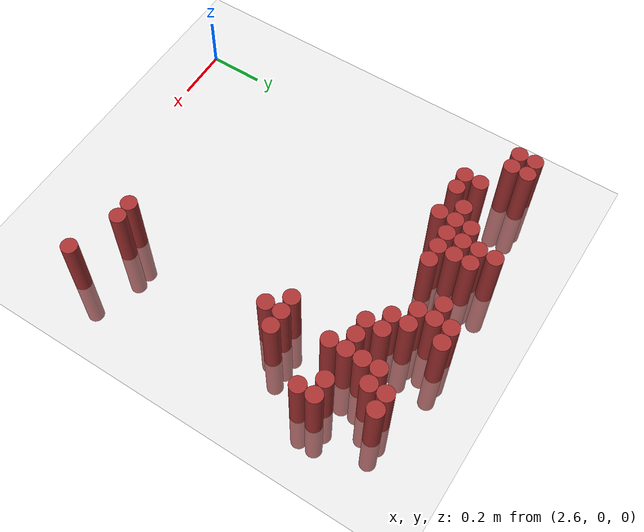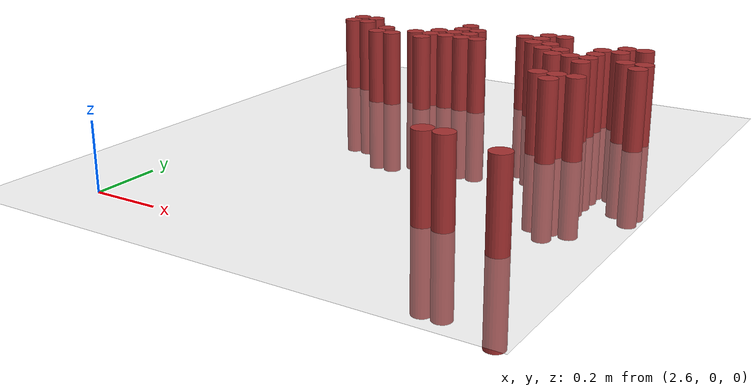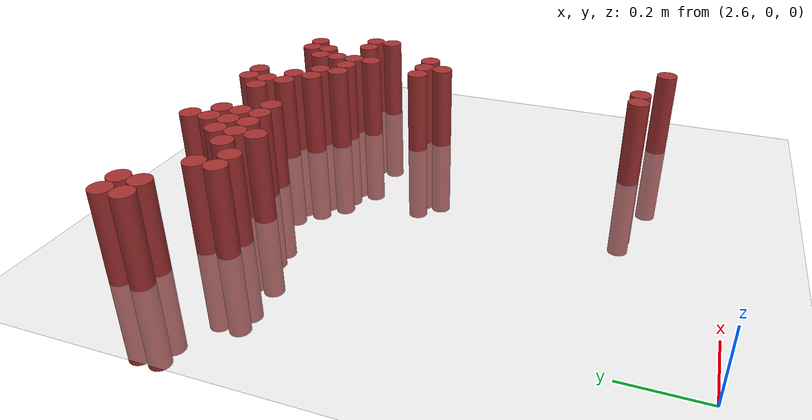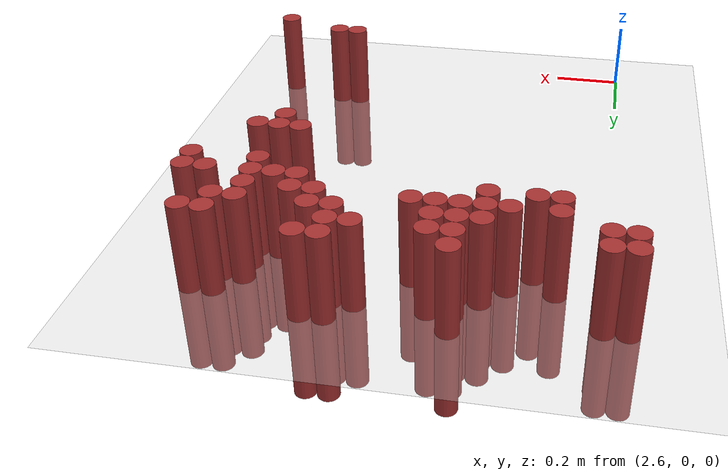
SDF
<sdf version="1.6">
 <world name="default">
  <model name="ground_plane">
   <static>1</static>
   <link name="link">
    <collision name="collision">
     <geometry><plane><normal>0 0 1</normal><size>100 100</size></plane></geometry>
     <surface><friction><ode><mu>100</mu><mu2>50</mu2></ode></friction></surface>
    </collision>
    <visual name="visual">
     <cast_shadows>0</cast_shadows>
     <geometry><plane><normal>0 0 1</normal><size>100 100</size></plane></geometry>
     <material>
      <script><uri>file://media/materials/scripts/gazebo.material</uri><name>Gazebo/Grey</name></script>
     </material>
    </visual>
   </link>
  </model>
  <model name="unit_cylinder_155">
   <static>1</static>
   <pose>2.970000 1.410000 0.000000 0.000000 0.000000 0.000000</pose>
   <link name="link">
    <inertial>
     <mass>1</mass>
     <inertia><ixx>0.145833</ixx><ixy>0</ixy><ixz>0</ixz><iyy>0.145833</iyy><iyz>0</iyz><izz>0.125</izz></inertia>
    </inertial>
    <collision name="collision">
     <geometry><cylinder><radius>0.030000</radius><length>0.5</length></cylinder></geometry>
    </collision>
    <visual name="visual">
     <geometry><cylinder><radius>0.030000</radius><length>0.5</length></cylinder></geometry>
     <material>
      <ambient>0.648000 0.192000 0.192000 1</ambient>
      <diffuse>0.648000 0.192000 0.192000 1</diffuse>
     </material>
     <material>
      <script><name>Gazebo/Grey</name><uri>file://media/materials/scripts/gazebo.material</uri></script>
     </material>
    </visual>
   </link>
  </model>
  <model name="unit_cylinder_156">
   <static>1</static>
   <pose>3.270000 1.410000 0.000000 0.000000 0.000000 0.000000</pose>
   <link name="link">
    <inertial>
     <mass>1</mass>
     <inertia><ixx>0.145833</ixx><ixy>0</ixy><ixz>0</ixz><iyy>0.145833</iyy><iyz>0</iyz><izz>0.125</izz></inertia>
    </inertial>
    <collision name="collision">
     <geometry><cylinder><radius>0.030000</radius><length>0.5</length></cylinder></geometry>
    </collision>
    <visual name="visual">
     <geometry><cylinder><radius>0.030000</radius><length>0.5</length></cylinder></geometry>
     <material>
      <ambient>0.648000 0.192000 0.192000 1</ambient>
      <diffuse>0.648000 0.192000 0.192000 1</diffuse>
     </material>
     <material>
      <script><name>Gazebo/Grey</name><uri>file://media/materials/scripts/gazebo.material</uri></script>
     </material>
    </visual>
   </link>
  </model>
  <model name="unit_cylinder_157">
   <static>1</static>
   <pose>3.330000 1.410000 0.000000 0.000000 0.000000 0.000000</pose>
   <link name="link">
    <inertial>
     <mass>1</mass>
     <inertia><ixx>0.145833</ixx><ixy>0</ixy><ixz>0</ixz><iyy>0.145833</iyy><iyz>0</iyz><izz>0.125</izz></inertia>
    </inertial>
    <collision name="collision">
     <geometry><cylinder><radius>0.030000</radius><length>0.5</length></cylinder></geometry>
    </collision>
    <visual name="visual">
     <geometry><cylinder><radius>0.030000</radius><length>0.5</length></cylinder></geometry>
     <material>
      <ambient>0.648000 0.192000 0.192000 1</ambient>
      <diffuse>0.648000 0.192000 0.192000 1</diffuse>
     </material>
     <material>
      <script><name>Gazebo/Grey</name><uri>file://media/materials/scripts/gazebo.material</uri></script>
     </material>
    </visual>
   </link>
  </model>
  <model name="unit_cylinder_161">
   <static>1</static>
   <pose>2.550000 1.350000 0.000000 0.000000 0.000000 0.000000</pose>
   <link name="link">
    <inertial>
     <mass>1</mass>
     <inertia><ixx>0.145833</ixx><ixy>0</ixy><ixz>0</ixz><iyy>0.145833</iyy><iyz>0</iyz><izz>0.125</izz></inertia>
    </inertial>
    <collision name="collision">
     <geometry><cylinder><radius>0.030000</radius><length>0.5</length></cylinder></geometry>
    </collision>
    <visual name="visual">
     <geometry><cylinder><radius>0.030000</radius><length>0.5</length></cylinder></geometry>
     <material>
      <ambient>0.648000 0.192000 0.192000 1</ambient>
      <diffuse>0.648000 0.192000 0.192000 1</diffuse>
     </material>
     <material>
      <script><name>Gazebo/Grey</name><uri>file://media/materials/scripts/gazebo.material</uri></script>
     </material>
    </visual>
   </link>
  </model>
  <model name="unit_cylinder_162">
   <static>1</static>
   <pose>2.610000 1.350000 0.000000 0.000000 0.000000 0.000000</pose>
   <link name="link">
    <inertial>
     <mass>1</mass>
     <inertia><ixx>0.145833</ixx><ixy>0</ixy><ixz>0</ixz><iyy>0.145833</iyy><iyz>0</iyz><izz>0.125</izz></inertia>
    </inertial>
    <collision name="collision">
     <geometry><cylinder><radius>0.030000</radius><length>0.5</length></cylinder></geometry>
    </collision>
    <visual name="visual">
     <geometry><cylinder><radius>0.030000</radius><length>0.5</length></cylinder></geometry>
     <material>
      <ambient>0.648000 0.192000 0.192000 1</ambient>
      <diffuse>0.648000 0.192000 0.192000 1</diffuse>
     </material>
     <material>
      <script><name>Gazebo/Grey</name><uri>file://media/materials/scripts/gazebo.material</uri></script>
     </material>
    </visual>
   </link>
  </model>
  <model name="unit_cylinder_163">
   <static>1</static>
   <pose>2.970000 1.350000 0.000000 0.000000 0.000000 0.000000</pose>
   <link name="link">
    <inertial>
     <mass>1</mass>
     <inertia><ixx>0.145833</ixx><ixy>0</ixy><ixz>0</ixz><iyy>0.145833</iyy><iyz>0</iyz><izz>0.125</izz></inertia>
    </inertial>
    <collision name="collision">
     <geometry><cylinder><radius>0.030000</radius><length>0.5</length></cylinder></geometry>
    </collision>
    <visual name="visual">
     <geometry><cylinder><radius>0.030000</radius><length>0.5</length></cylinder></geometry>
     <material>
      <ambient>0.648000 0.192000 0.192000 1</ambient>
      <diffuse>0.648000 0.192000 0.192000 1</diffuse>
     </material>
     <material>
      <script><name>Gazebo/Grey</name><uri>file://media/materials/scripts/gazebo.material</uri></script>
     </material>
    </visual>
   </link>
  </model>
  <model name="unit_cylinder_164">
   <static>1</static>
   <pose>3.030000 1.350000 0.000000 0.000000 0.000000 0.000000</pose>
   <link name="link">
    <inertial>
     <mass>1</mass>
     <inertia><ixx>0.145833</ixx><ixy>0</ixy><ixz>0</ixz><iyy>0.145833</iyy><iyz>0</iyz><izz>0.125</izz></inertia>
    </inertial>
    <collision name="collision">
     <geometry><cylinder><radius>0.030000</radius><length>0.5</length></cylinder></geometry>
    </collision>
    <visual name="visual">
     <geometry><cylinder><radius>0.030000</radius><length>0.5</length></cylinder></geometry>
     <material>
      <ambient>0.648000 0.192000 0.192000 1</ambient>
      <diffuse>0.648000 0.192000 0.192000 1</diffuse>
     </material>
     <material>
      <script><name>Gazebo/Grey</name><uri>file://media/materials/scripts/gazebo.material</uri></script>
     </material>
    </visual>
   </link>
  </model>
  <model name="unit_cylinder_165">
   <static>1</static>
   <pose>3.210000 1.350000 0.000000 0.000000 0.000000 0.000000</pose>
   <link name="link">
    <inertial>
     <mass>1</mass>
     <inertia><ixx>0.145833</ixx><ixy>0</ixy><ixz>0</ixz><iyy>0.145833</iyy><iyz>0</iyz><izz>0.125</izz></inertia>
    </inertial>
    <collision name="collision">
     <geometry><cylinder><radius>0.030000</radius><length>0.5</length></cylinder></geometry>
    </collision>
    <visual name="visual">
     <geometry><cylinder><radius>0.030000</radius><length>0.5</length></cylinder></geometry>
     <material>
      <ambient>0.648000 0.192000 0.192000 1</ambient>
      <diffuse>0.648000 0.192000 0.192000 1</diffuse>
     </material>
     <material>
      <script><name>Gazebo/Grey</name><uri>file://media/materials/scripts/gazebo.material</uri></script>
     </material>
    </visual>
   </link>
  </model>
  <model name="unit_cylinder_166">
   <static>1</static>
   <pose>3.270000 1.350000 0.000000 0.000000 0.000000 0.000000</pose>
   <link name="link">
    <inertial>
     <mass>1</mass>
     <inertia><ixx>0.145833</ixx><ixy>0</ixy><ixz>0</ixz><iyy>0.145833</iyy><iyz>0</iyz><izz>0.125</izz></inertia>
    </inertial>
    <collision name="collision">
     <geometry><cylinder><radius>0.030000</radius><length>0.5</length></cylinder></geometry>
    </collision>
    <visual name="visual">
     <geometry><cylinder><radius>0.030000</radius><length>0.5</length></cylinder></geometry>
     <material>
      <ambient>0.648000 0.192000 0.192000 1</ambient>
      <diffuse>0.648000 0.192000 0.192000 1</diffuse>
     </material>
     <material>
      <script><name>Gazebo/Grey</name><uri>file://media/materials/scripts/gazebo.material</uri></script>
     </material>
    </visual>
   </link>
  </model>
  <model name="unit_cylinder_167">
   <static>1</static>
   <pose>3.570000 1.350000 0.000000 0.000000 0.000000 0.000000</pose>
   <link name="link">
    <inertial>
     <mass>1</mass>
     <inertia><ixx>0.145833</ixx><ixy>0</ixy><ixz>0</ixz><iyy>0.145833</iyy><iyz>0</iyz><izz>0.125</izz></inertia>
    </inertial>
    <collision name="collision">
     <geometry><cylinder><radius>0.030000</radius><length>0.5</length></cylinder></geometry>
    </collision>
    <visual name="visual">
     <geometry><cylinder><radius>0.030000</radius><length>0.5</length></cylinder></geometry>
     <material>
      <ambient>0.648000 0.192000 0.192000 1</ambient>
      <diffuse>0.648000 0.192000 0.192000 1</diffuse>
     </material>
     <material>
      <script><name>Gazebo/Grey</name><uri>file://media/materials/scripts/gazebo.material</uri></script>
     </material>
    </visual>
   </link>
  </model>
  <model name="unit_cylinder_168">
   <static>1</static>
   <pose>3.630000 1.350000 0.000000 0.000000 0.000000 0.000000</pose>
   <link name="link">
    <inertial>
     <mass>1</mass>
     <inertia><ixx>0.145833</ixx><ixy>0</ixy><ixz>0</ixz><iyy>0.145833</iyy><iyz>0</iyz><izz>0.125</izz></inertia>
    </inertial>
    <collision name="collision">
     <geometry><cylinder><radius>0.030000</radius><length>0.5</length></cylinder></geometry>
    </collision>
    <visual name="visual">
     <geometry><cylinder><radius>0.030000</radius><length>0.5</length></cylinder></geometry>
     <material>
      <ambient>0.648000 0.192000 0.192000 1</ambient>
      <diffuse>0.648000 0.192000 0.192000 1</diffuse>
     </material>
     <material>
      <script><name>Gazebo/Grey</name><uri>file://media/materials/scripts/gazebo.material</uri></script>
     </material>
    </visual>
   </link>
  </model>
  <model name="unit_cylinder_170">
   <static>1</static>
   <pose>2.550000 1.290000 0.000000 0.000000 0.000000 0.000000</pose>
   <link name="link">
    <inertial>
     <mass>1</mass>
     <inertia><ixx>0.145833</ixx><ixy>0</ixy><ixz>0</ixz><iyy>0.145833</iyy><iyz>0</iyz><izz>0.125</izz></inertia>
    </inertial>
    <collision name="collision">
     <geometry><cylinder><radius>0.030000</radius><length>0.5</length></cylinder></geometry>
    </collision>
    <visual name="visual">
     <geometry><cylinder><radius>0.030000</radius><length>0.5</length></cylinder></geometry>
     <material>
      <ambient>0.648000 0.192000 0.192000 1</ambient>
      <diffuse>0.648000 0.192000 0.192000 1</diffuse>
     </material>
     <material>
      <script><name>Gazebo/Grey</name><uri>file://media/materials/scripts/gazebo.material</uri></script>
     </material>
    </visual>
   </link>
  </model>
  <model name="unit_cylinder_171">
   <static>1</static>
   <pose>2.610000 1.290000 0.000000 0.000000 0.000000 0.000000</pose>
   <link name="link">
    <inertial>
     <mass>1</mass>
     <inertia><ixx>0.145833</ixx><ixy>0</ixy><ixz>0</ixz><iyy>0.145833</iyy><iyz>0</iyz><izz>0.125</izz></inertia>
    </inertial>
    <collision name="collision">
     <geometry><cylinder><radius>0.030000</radius><length>0.5</length></cylinder></geometry>
    </collision>
    <visual name="visual">
     <geometry><cylinder><radius>0.030000</radius><length>0.5</length></cylinder></geometry>
     <material>
      <ambient>0.648000 0.192000 0.192000 1</ambient>
      <diffuse>0.648000 0.192000 0.192000 1</diffuse>
     </material>
     <material>
      <script><name>Gazebo/Grey</name><uri>file://media/materials/scripts/gazebo.material</uri></script>
     </material>
    </visual>
   </link>
  </model>
  <model name="unit_cylinder_172">
   <static>1</static>
   <pose>2.910000 1.290000 0.000000 0.000000 0.000000 0.000000</pose>
   <link name="link">
    <inertial>
     <mass>1</mass>
     <inertia><ixx>0.145833</ixx><ixy>0</ixy><ixz>0</ixz><iyy>0.145833</iyy><iyz>0</iyz><izz>0.125</izz></inertia>
    </inertial>
    <collision name="collision">
     <geometry><cylinder><radius>0.030000</radius><length>0.5</length></cylinder></geometry>
    </collision>
    <visual name="visual">
     <geometry><cylinder><radius>0.030000</radius><length>0.5</length></cylinder></geometry>
     <material>
      <ambient>0.648000 0.192000 0.192000 1</ambient>
      <diffuse>0.648000 0.192000 0.192000 1</diffuse>
     </material>
     <material>
      <script><name>Gazebo/Grey</name><uri>file://media/materials/scripts/gazebo.material</uri></script>
     </material>
    </visual>
   </link>
  </model>
  <model name="unit_cylinder_173">
   <static>1</static>
   <pose>2.970000 1.290000 0.000000 0.000000 0.000000 0.000000</pose>
   <link name="link">
    <inertial>
     <mass>1</mass>
     <inertia><ixx>0.145833</ixx><ixy>0</ixy><ixz>0</ixz><iyy>0.145833</iyy><iyz>0</iyz><izz>0.125</izz></inertia>
    </inertial>
    <collision name="collision">
     <geometry><cylinder><radius>0.030000</radius><length>0.5</length></cylinder></geometry>
    </collision>
    <visual name="visual">
     <geometry><cylinder><radius>0.030000</radius><length>0.5</length></cylinder></geometry>
     <material>
      <ambient>0.648000 0.192000 0.192000 1</ambient>
      <diffuse>0.648000 0.192000 0.192000 1</diffuse>
     </material>
     <material>
      <script><name>Gazebo/Grey</name><uri>file://media/materials/scripts/gazebo.material</uri></script>
     </material>
    </visual>
   </link>
  </model>
  <model name="unit_cylinder_174">
   <static>1</static>
   <pose>3.030000 1.290000 0.000000 0.000000 0.000000 0.000000</pose>
   <link name="link">
    <inertial>
     <mass>1</mass>
     <inertia><ixx>0.145833</ixx><ixy>0</ixy><ixz>0</ixz><iyy>0.145833</iyy><iyz>0</iyz><izz>0.125</izz></inertia>
    </inertial>
    <collision name="collision">
     <geometry><cylinder><radius>0.030000</radius><length>0.5</length></cylinder></geometry>
    </collision>
    <visual name="visual">
     <geometry><cylinder><radius>0.030000</radius><length>0.5</length></cylinder></geometry>
     <material>
      <ambient>0.648000 0.192000 0.192000 1</ambient>
      <diffuse>0.648000 0.192000 0.192000 1</diffuse>
     </material>
     <material>
      <script><name>Gazebo/Grey</name><uri>file://media/materials/scripts/gazebo.material</uri></script>
     </material>
    </visual>
   </link>
  </model>
  <model name="unit_cylinder_175">
   <static>1</static>
   <pose>3.270000 1.290000 0.000000 0.000000 0.000000 0.000000</pose>
   <link name="link">
    <inertial>
     <mass>1</mass>
     <inertia><ixx>0.145833</ixx><ixy>0</ixy><ixz>0</ixz><iyy>0.145833</iyy><iyz>0</iyz><izz>0.125</izz></inertia>
    </inertial>
    <collision name="collision">
     <geometry><cylinder><radius>0.030000</radius><length>0.5</length></cylinder></geometry>
    </collision>
    <visual name="visual">
     <geometry><cylinder><radius>0.030000</radius><length>0.5</length></cylinder></geometry>
     <material>
      <ambient>0.648000 0.192000 0.192000 1</ambient>
      <diffuse>0.648000 0.192000 0.192000 1</diffuse>
     </material>
     <material>
      <script><name>Gazebo/Grey</name><uri>file://media/materials/scripts/gazebo.material</uri></script>
     </material>
    </visual>
   </link>
  </model>
  <model name="unit_cylinder_176">
   <static>1</static>
   <pose>3.330000 1.290000 0.000000 0.000000 0.000000 0.000000</pose>
   <link name="link">
    <inertial>
     <mass>1</mass>
     <inertia><ixx>0.145833</ixx><ixy>0</ixy><ixz>0</ixz><iyy>0.145833</iyy><iyz>0</iyz><izz>0.125</izz></inertia>
    </inertial>
    <collision name="collision">
     <geometry><cylinder><radius>0.030000</radius><length>0.5</length></cylinder></geometry>
    </collision>
    <visual name="visual">
     <geometry><cylinder><radius>0.030000</radius><length>0.5</length></cylinder></geometry>
     <material>
      <ambient>0.648000 0.192000 0.192000 1</ambient>
      <diffuse>0.648000 0.192000 0.192000 1</diffuse>
     </material>
     <material>
      <script><name>Gazebo/Grey</name><uri>file://media/materials/scripts/gazebo.material</uri></script>
     </material>
    </visual>
   </link>
  </model>
  <model name="unit_cylinder_177">
   <static>1</static>
   <pose>3.510000 1.290000 0.000000 0.000000 0.000000 0.000000</pose>
   <link name="link">
    <inertial>
     <mass>1</mass>
     <inertia><ixx>0.145833</ixx><ixy>0</ixy><ixz>0</ixz><iyy>0.145833</iyy><iyz>0</iyz><izz>0.125</izz></inertia>
    </inertial>
    <collision name="collision">
     <geometry><cylinder><radius>0.030000</radius><length>0.5</length></cylinder></geometry>
    </collision>
    <visual name="visual">
     <geometry><cylinder><radius>0.030000</radius><length>0.5</length></cylinder></geometry>
     <material>
      <ambient>0.648000 0.192000 0.192000 1</ambient>
      <diffuse>0.648000 0.192000 0.192000 1</diffuse>
     </material>
     <material>
      <script><name>Gazebo/Grey</name><uri>file://media/materials/scripts/gazebo.material</uri></script>
     </material>
    </visual>
   </link>
  </model>
  <model name="unit_cylinder_178">
   <static>1</static>
   <pose>3.570000 1.290000 0.000000 0.000000 0.000000 0.000000</pose>
   <link name="link">
    <inertial>
     <mass>1</mass>
     <inertia><ixx>0.145833</ixx><ixy>0</ixy><ixz>0</ixz><iyy>0.145833</iyy><iyz>0</iyz><izz>0.125</izz></inertia>
    </inertial>
    <collision name="collision">
     <geometry><cylinder><radius>0.030000</radius><length>0.5</length></cylinder></geometry>
    </collision>
    <visual name="visual">
     <geometry><cylinder><radius>0.030000</radius><length>0.5</length></cylinder></geometry>
     <material>
      <ambient>0.648000 0.192000 0.192000 1</ambient>
      <diffuse>0.648000 0.192000 0.192000 1</diffuse>
     </material>
     <material>
      <script><name>Gazebo/Grey</name><uri>file://media/materials/scripts/gazebo.material</uri></script>
     </material>
    </visual>
   </link>
  </model>
  <model name="unit_cylinder_180">
   <static>1</static>
   <pose>2.730000 1.230000 0.000000 0.000000 0.000000 0.000000</pose>
   <link name="link">
    <inertial>
     <mass>1</mass>
     <inertia><ixx>0.145833</ixx><ixy>0</ixy><ixz>0</ixz><iyy>0.145833</iyy><iyz>0</iyz><izz>0.125</izz></inertia>
    </inertial>
    <collision name="collision">
     <geometry><cylinder><radius>0.030000</radius><length>0.5</length></cylinder></geometry>
    </collision>
    <visual name="visual">
     <geometry><cylinder><radius>0.030000</radius><length>0.5</length></cylinder></geometry>
     <material>
      <ambient>0.648000 0.192000 0.192000 1</ambient>
      <diffuse>0.648000 0.192000 0.192000 1</diffuse>
     </material>
     <material>
      <script><name>Gazebo/Grey</name><uri>file://media/materials/scripts/gazebo.material</uri></script>
     </material>
    </visual>
   </link>
  </model>
  <model name="unit_cylinder_181">
   <static>1</static>
   <pose>2.850000 1.230000 0.000000 0.000000 0.000000 0.000000</pose>
   <link name="link">
    <inertial>
     <mass>1</mass>
     <inertia><ixx>0.145833</ixx><ixy>0</ixy><ixz>0</ixz><iyy>0.145833</iyy><iyz>0</iyz><izz>0.125</izz></inertia>
    </inertial>
    <collision name="collision">
     <geometry><cylinder><radius>0.030000</radius><length>0.5</length></cylinder></geometry>
    </collision>
    <visual name="visual">
     <geometry><cylinder><radius>0.030000</radius><length>0.5</length></cylinder></geometry>
     <material>
      <ambient>0.648000 0.192000 0.192000 1</ambient>
      <diffuse>0.648000 0.192000 0.192000 1</diffuse>
     </material>
     <material>
      <script><name>Gazebo/Grey</name><uri>file://media/materials/scripts/gazebo.material</uri></script>
     </material>
    </visual>
   </link>
  </model>
  <model name="unit_cylinder_182">
   <static>1</static>
   <pose>2.910000 1.230000 0.000000 0.000000 0.000000 0.000000</pose>
   <link name="link">
    <inertial>
     <mass>1</mass>
     <inertia><ixx>0.145833</ixx><ixy>0</ixy><ixz>0</ixz><iyy>0.145833</iyy><iyz>0</iyz><izz>0.125</izz></inertia>
    </inertial>
    <collision name="collision">
     <geometry><cylinder><radius>0.030000</radius><length>0.5</length></cylinder></geometry>
    </collision>
    <visual name="visual">
     <geometry><cylinder><radius>0.030000</radius><length>0.5</length></cylinder></geometry>
     <material>
      <ambient>0.648000 0.192000 0.192000 1</ambient>
      <diffuse>0.648000 0.192000 0.192000 1</diffuse>
     </material>
     <material>
      <script><name>Gazebo/Grey</name><uri>file://media/materials/scripts/gazebo.material</uri></script>
     </material>
    </visual>
   </link>
  </model>
  <model name="unit_cylinder_183">
   <static>1</static>
   <pose>2.970000 1.230000 0.000000 0.000000 0.000000 0.000000</pose>
   <link name="link">
    <inertial>
     <mass>1</mass>
     <inertia><ixx>0.145833</ixx><ixy>0</ixy><ixz>0</ixz><iyy>0.145833</iyy><iyz>0</iyz><izz>0.125</izz></inertia>
    </inertial>
    <collision name="collision">
     <geometry><cylinder><radius>0.030000</radius><length>0.5</length></cylinder></geometry>
    </collision>
    <visual name="visual">
     <geometry><cylinder><radius>0.030000</radius><length>0.5</length></cylinder></geometry>
     <material>
      <ambient>0.648000 0.192000 0.192000 1</ambient>
      <diffuse>0.648000 0.192000 0.192000 1</diffuse>
     </material>
     <material>
      <script><name>Gazebo/Grey</name><uri>file://media/materials/scripts/gazebo.material</uri></script>
     </material>
    </visual>
   </link>
  </model>
  <model name="unit_cylinder_184">
   <static>1</static>
   <pose>3.030000 1.230000 0.000000 0.000000 0.000000 0.000000</pose>
   <link name="link">
    <inertial>
     <mass>1</mass>
     <inertia><ixx>0.145833</ixx><ixy>0</ixy><ixz>0</ixz><iyy>0.145833</iyy><iyz>0</iyz><izz>0.125</izz></inertia>
    </inertial>
    <collision name="collision">
     <geometry><cylinder><radius>0.030000</radius><length>0.5</length></cylinder></geometry>
    </collision>
    <visual name="visual">
     <geometry><cylinder><radius>0.030000</radius><length>0.5</length></cylinder></geometry>
     <material>
      <ambient>0.648000 0.192000 0.192000 1</ambient>
      <diffuse>0.648000 0.192000 0.192000 1</diffuse>
     </material>
     <material>
      <script><name>Gazebo/Grey</name><uri>file://media/materials/scripts/gazebo.material</uri></script>
     </material>
    </visual>
   </link>
  </model>
  <model name="unit_cylinder_185">
   <static>1</static>
   <pose>3.090000 1.230000 0.000000 0.000000 0.000000 0.000000</pose>
   <link name="link">
    <inertial>
     <mass>1</mass>
     <inertia><ixx>0.145833</ixx><ixy>0</ixy><ixz>0</ixz><iyy>0.145833</iyy><iyz>0</iyz><izz>0.125</izz></inertia>
    </inertial>
    <collision name="collision">
     <geometry><cylinder><radius>0.030000</radius><length>0.5</length></cylinder></geometry>
    </collision>
    <visual name="visual">
     <geometry><cylinder><radius>0.030000</radius><length>0.5</length></cylinder></geometry>
     <material>
      <ambient>0.648000 0.192000 0.192000 1</ambient>
      <diffuse>0.648000 0.192000 0.192000 1</diffuse>
     </material>
     <material>
      <script><name>Gazebo/Grey</name><uri>file://media/materials/scripts/gazebo.material</uri></script>
     </material>
    </visual>
   </link>
  </model>
  <model name="unit_cylinder_186">
   <static>1</static>
   <pose>3.330000 1.230000 0.000000 0.000000 0.000000 0.000000</pose>
   <link name="link">
    <inertial>
     <mass>1</mass>
     <inertia><ixx>0.145833</ixx><ixy>0</ixy><ixz>0</ixz><iyy>0.145833</iyy><iyz>0</iyz><izz>0.125</izz></inertia>
    </inertial>
    <collision name="collision">
     <geometry><cylinder><radius>0.030000</radius><length>0.5</length></cylinder></geometry>
    </collision>
    <visual name="visual">
     <geometry><cylinder><radius>0.030000</radius><length>0.5</length></cylinder></geometry>
     <material>
      <ambient>0.648000 0.192000 0.192000 1</ambient>
      <diffuse>0.648000 0.192000 0.192000 1</diffuse>
     </material>
     <material>
      <script><name>Gazebo/Grey</name><uri>file://media/materials/scripts/gazebo.material</uri></script>
     </material>
    </visual>
   </link>
  </model>
  <model name="unit_cylinder_187">
   <static>1</static>
   <pose>3.390000 1.230000 0.000000 0.000000 0.000000 0.000000</pose>
   <link name="link">
    <inertial>
     <mass>1</mass>
     <inertia><ixx>0.145833</ixx><ixy>0</ixy><ixz>0</ixz><iyy>0.145833</iyy><iyz>0</iyz><izz>0.125</izz></inertia>
    </inertial>
    <collision name="collision">
     <geometry><cylinder><radius>0.030000</radius><length>0.5</length></cylinder></geometry>
    </collision>
    <visual name="visual">
     <geometry><cylinder><radius>0.030000</radius><length>0.5</length></cylinder></geometry>
     <material>
      <ambient>0.648000 0.192000 0.192000 1</ambient>
      <diffuse>0.648000 0.192000 0.192000 1</diffuse>
     </material>
     <material>
      <script><name>Gazebo/Grey</name><uri>file://media/materials/scripts/gazebo.material</uri></script>
     </material>
    </visual>
   </link>
  </model>
  <model name="unit_cylinder_188">
   <static>1</static>
   <pose>3.510000 1.230000 0.000000 0.000000 0.000000 0.000000</pose>
   <link name="link">
    <inertial>
     <mass>1</mass>
     <inertia><ixx>0.145833</ixx><ixy>0</ixy><ixz>0</ixz><iyy>0.145833</iyy><iyz>0</iyz><izz>0.125</izz></inertia>
    </inertial>
    <collision name="collision">
     <geometry><cylinder><radius>0.030000</radius><length>0.5</length></cylinder></geometry>
    </collision>
    <visual name="visual">
     <geometry><cylinder><radius>0.030000</radius><length>0.5</length></cylinder></geometry>
     <material>
      <ambient>0.648000 0.192000 0.192000 1</ambient>
      <diffuse>0.648000 0.192000 0.192000 1</diffuse>
     </material>
     <material>
      <script><name>Gazebo/Grey</name><uri>file://media/materials/scripts/gazebo.material</uri></script>
     </material>
    </visual>
   </link>
  </model>
  <model name="unit_cylinder_191">
   <static>1</static>
   <pose>2.730000 1.170000 0.000000 0.000000 0.000000 0.000000</pose>
   <link name="link">
    <inertial>
     <mass>1</mass>
     <inertia><ixx>0.145833</ixx><ixy>0</ixy><ixz>0</ixz><iyy>0.145833</iyy><iyz>0</iyz><izz>0.125</izz></inertia>
    </inertial>
    <collision name="collision">
     <geometry><cylinder><radius>0.030000</radius><length>0.5</length></cylinder></geometry>
    </collision>
    <visual name="visual">
     <geometry><cylinder><radius>0.030000</radius><length>0.5</length></cylinder></geometry>
     <material>
      <ambient>0.648000 0.192000 0.192000 1</ambient>
      <diffuse>0.648000 0.192000 0.192000 1</diffuse>
     </material>
     <material>
      <script><name>Gazebo/Grey</name><uri>file://media/materials/scripts/gazebo.material</uri></script>
     </material>
    </visual>
   </link>
  </model>
  <model name="unit_cylinder_192">
   <static>1</static>
   <pose>2.790000 1.170000 0.000000 0.000000 0.000000 0.000000</pose>
   <link name="link">
    <inertial>
     <mass>1</mass>
     <inertia><ixx>0.145833</ixx><ixy>0</ixy><ixz>0</ixz><iyy>0.145833</iyy><iyz>0</iyz><izz>0.125</izz></inertia>
    </inertial>
    <collision name="collision">
     <geometry><cylinder><radius>0.030000</radius><length>0.5</length></cylinder></geometry>
    </collision>
    <visual name="visual">
     <geometry><cylinder><radius>0.030000</radius><length>0.5</length></cylinder></geometry>
     <material>
      <ambient>0.648000 0.192000 0.192000 1</ambient>
      <diffuse>0.648000 0.192000 0.192000 1</diffuse>
     </material>
     <material>
      <script><name>Gazebo/Grey</name><uri>file://media/materials/scripts/gazebo.material</uri></script>
     </material>
    </visual>
   </link>
  </model>
  <model name="unit_cylinder_193">
   <static>1</static>
   <pose>2.910000 1.170000 0.000000 0.000000 0.000000 0.000000</pose>
   <link name="link">
    <inertial>
     <mass>1</mass>
     <inertia><ixx>0.145833</ixx><ixy>0</ixy><ixz>0</ixz><iyy>0.145833</iyy><iyz>0</iyz><izz>0.125</izz></inertia>
    </inertial>
    <collision name="collision">
     <geometry><cylinder><radius>0.030000</radius><length>0.5</length></cylinder></geometry>
    </collision>
    <visual name="visual">
     <geometry><cylinder><radius>0.030000</radius><length>0.5</length></cylinder></geometry>
     <material>
      <ambient>0.648000 0.192000 0.192000 1</ambient>
      <diffuse>0.648000 0.192000 0.192000 1</diffuse>
     </material>
     <material>
      <script><name>Gazebo/Grey</name><uri>file://media/materials/scripts/gazebo.material</uri></script>
     </material>
    </visual>
   </link>
  </model>
  <model name="unit_cylinder_194">
   <static>1</static>
   <pose>3.390000 1.170000 0.000000 0.000000 0.000000 0.000000</pose>
   <link name="link">
    <inertial>
     <mass>1</mass>
     <inertia><ixx>0.145833</ixx><ixy>0</ixy><ixz>0</ixz><iyy>0.145833</iyy><iyz>0</iyz><izz>0.125</izz></inertia>
    </inertial>
    <collision name="collision">
     <geometry><cylinder><radius>0.030000</radius><length>0.5</length></cylinder></geometry>
    </collision>
    <visual name="visual">
     <geometry><cylinder><radius>0.030000</radius><length>0.5</length></cylinder></geometry>
     <material>
      <ambient>0.648000 0.192000 0.192000 1</ambient>
      <diffuse>0.648000 0.192000 0.192000 1</diffuse>
     </material>
     <material>
      <script><name>Gazebo/Grey</name><uri>file://media/materials/scripts/gazebo.material</uri></script>
     </material>
    </visual>
   </link>
  </model>
  <model name="unit_cylinder_195">
   <static>1</static>
   <pose>3.450000 1.170000 0.000000 0.000000 0.000000 0.000000</pose>
   <link name="link">
    <inertial>
     <mass>1</mass>
     <inertia><ixx>0.145833</ixx><ixy>0</ixy><ixz>0</ixz><iyy>0.145833</iyy><iyz>0</iyz><izz>0.125</izz></inertia>
    </inertial>
    <collision name="collision">
     <geometry><cylinder><radius>0.030000</radius><length>0.5</length></cylinder></geometry>
    </collision>
    <visual name="visual">
     <geometry><cylinder><radius>0.030000</radius><length>0.5</length></cylinder></geometry>
     <material>
      <ambient>0.648000 0.192000 0.192000 1</ambient>
      <diffuse>0.648000 0.192000 0.192000 1</diffuse>
     </material>
     <material>
      <script><name>Gazebo/Grey</name><uri>file://media/materials/scripts/gazebo.material</uri></script>
     </material>
    </visual>
   </link>
  </model>
  <model name="unit_cylinder_196">
   <static>1</static>
   <pose>3.510000 1.170000 0.000000 0.000000 0.000000 0.000000</pose>
   <link name="link">
    <inertial>
     <mass>1</mass>
     <inertia><ixx>0.145833</ixx><ixy>0</ixy><ixz>0</ixz><iyy>0.145833</iyy><iyz>0</iyz><izz>0.125</izz></inertia>
    </inertial>
    <collision name="collision">
     <geometry><cylinder><radius>0.030000</radius><length>0.5</length></cylinder></geometry>
    </collision>
    <visual name="visual">
     <geometry><cylinder><radius>0.030000</radius><length>0.5</length></cylinder></geometry>
     <material>
      <ambient>0.648000 0.192000 0.192000 1</ambient>
      <diffuse>0.648000 0.192000 0.192000 1</diffuse>
     </material>
     <material>
      <script><name>Gazebo/Grey</name><uri>file://media/materials/scripts/gazebo.material</uri></script>
     </material>
    </visual>
   </link>
  </model>
  <model name="unit_cylinder_197">
   <static>1</static>
   <pose>3.630000 1.170000 0.000000 0.000000 0.000000 0.000000</pose>
   <link name="link">
    <inertial>
     <mass>1</mass>
     <inertia><ixx>0.145833</ixx><ixy>0</ixy><ixz>0</ixz><iyy>0.145833</iyy><iyz>0</iyz><izz>0.125</izz></inertia>
    </inertial>
    <collision name="collision">
     <geometry><cylinder><radius>0.030000</radius><length>0.5</length></cylinder></geometry>
    </collision>
    <visual name="visual">
     <geometry><cylinder><radius>0.030000</radius><length>0.5</length></cylinder></geometry>
     <material>
      <ambient>0.648000 0.192000 0.192000 1</ambient>
      <diffuse>0.648000 0.192000 0.192000 1</diffuse>
     </material>
     <material>
      <script><name>Gazebo/Grey</name><uri>file://media/materials/scripts/gazebo.material</uri></script>
     </material>
    </visual>
   </link>
  </model>
  <model name="unit_cylinder_198">
   <static>1</static>
   <pose>3.690000 1.170000 0.000000 0.000000 0.000000 0.000000</pose>
   <link name="link">
    <inertial>
     <mass>1</mass>
     <inertia><ixx>0.145833</ixx><ixy>0</ixy><ixz>0</ixz><iyy>0.145833</iyy><iyz>0</iyz><izz>0.125</izz></inertia>
    </inertial>
    <collision name="collision">
     <geometry><cylinder><radius>0.030000</radius><length>0.5</length></cylinder></geometry>
    </collision>
    <visual name="visual">
     <geometry><cylinder><radius>0.030000</radius><length>0.5</length></cylinder></geometry>
     <material>
      <ambient>0.648000 0.192000 0.192000 1</ambient>
      <diffuse>0.648000 0.192000 0.192000 1</diffuse>
     </material>
     <material>
      <script><name>Gazebo/Grey</name><uri>file://media/materials/scripts/gazebo.material</uri></script>
     </material>
    </visual>
   </link>
  </model>
  <model name="unit_cylinder_201">
   <static>1</static>
   <pose>3.510000 1.110000 0.000000 0.000000 0.000000 0.000000</pose>
   <link name="link">
    <inertial>
     <mass>1</mass>
     <inertia><ixx>0.145833</ixx><ixy>0</ixy><ixz>0</ixz><iyy>0.145833</iyy><iyz>0</iyz><izz>0.125</izz></inertia>
    </inertial>
    <collision name="collision">
     <geometry><cylinder><radius>0.030000</radius><length>0.5</length></cylinder></geometry>
    </collision>
    <visual name="visual">
     <geometry><cylinder><radius>0.030000</radius><length>0.5</length></cylinder></geometry>
     <material>
      <ambient>0.648000 0.192000 0.192000 1</ambient>
      <diffuse>0.648000 0.192000 0.192000 1</diffuse>
     </material>
     <material>
      <script><name>Gazebo/Grey</name><uri>file://media/materials/scripts/gazebo.material</uri></script>
     </material>
    </visual>
   </link>
  </model>
  <model name="unit_cylinder_202">
   <static>1</static>
   <pose>3.690000 1.110000 0.000000 0.000000 0.000000 0.000000</pose>
   <link name="link">
    <inertial>
     <mass>1</mass>
     <inertia><ixx>0.145833</ixx><ixy>0</ixy><ixz>0</ixz><iyy>0.145833</iyy><iyz>0</iyz><izz>0.125</izz></inertia>
    </inertial>
    <collision name="collision">
     <geometry><cylinder><radius>0.030000</radius><length>0.5</length></cylinder></geometry>
    </collision>
    <visual name="visual">
     <geometry><cylinder><radius>0.030000</radius><length>0.5</length></cylinder></geometry>
     <material>
      <ambient>0.648000 0.192000 0.192000 1</ambient>
      <diffuse>0.648000 0.192000 0.192000 1</diffuse>
     </material>
     <material>
      <script><name>Gazebo/Grey</name><uri>file://media/materials/scripts/gazebo.material</uri></script>
     </material>
    </visual>
   </link>
  </model>
  <model name="unit_cylinder_205">
   <static>1</static>
   <pose>3.450000 0.930000 0.000000 0.000000 0.000000 0.000000</pose>
   <link name="link">
    <inertial>
     <mass>1</mass>
     <inertia><ixx>0.145833</ixx><ixy>0</ixy><ixz>0</ixz><iyy>0.145833</iyy><iyz>0</iyz><izz>0.125</izz></inertia>
    </inertial>
    <collision name="collision">
     <geometry><cylinder><radius>0.030000</radius><length>0.5</length></cylinder></geometry>
    </collision>
    <visual name="visual">
     <geometry><cylinder><radius>0.030000</radius><length>0.5</length></cylinder></geometry>
     <material>
      <ambient>0.648000 0.192000 0.192000 1</ambient>
      <diffuse>0.648000 0.192000 0.192000 1</diffuse>
     </material>
     <material>
      <script><name>Gazebo/Grey</name><uri>file://media/materials/scripts/gazebo.material</uri></script>
     </material>
    </visual>
   </link>
  </model>
  <model name="unit_cylinder_206">
   <static>1</static>
   <pose>3.510000 0.930000 0.000000 0.000000 0.000000 0.000000</pose>
   <link name="link">
    <inertial>
     <mass>1</mass>
     <inertia><ixx>0.145833</ixx><ixy>0</ixy><ixz>0</ixz><iyy>0.145833</iyy><iyz>0</iyz><izz>0.125</izz></inertia>
    </inertial>
    <collision name="collision">
     <geometry><cylinder><radius>0.030000</radius><length>0.5</length></cylinder></geometry>
    </collision>
    <visual name="visual">
     <geometry><cylinder><radius>0.030000</radius><length>0.5</length></cylinder></geometry>
     <material>
      <ambient>0.648000 0.192000 0.192000 1</ambient>
      <diffuse>0.648000 0.192000 0.192000 1</diffuse>
     </material>
     <material>
      <script><name>Gazebo/Grey</name><uri>file://media/materials/scripts/gazebo.material</uri></script>
     </material>
    </visual>
   </link>
  </model>
  <model name="unit_cylinder_207">
   <static>1</static>
   <pose>3.570000 0.930000 0.000000 0.000000 0.000000 0.000000</pose>
   <link name="link">
    <inertial>
     <mass>1</mass>
     <inertia><ixx>0.145833</ixx><ixy>0</ixy><ixz>0</ixz><iyy>0.145833</iyy><iyz>0</iyz><izz>0.125</izz></inertia>
    </inertial>
    <collision name="collision">
     <geometry><cylinder><radius>0.030000</radius><length>0.5</length></cylinder></geometry>
    </collision>
    <visual name="visual">
     <geometry><cylinder><radius>0.030000</radius><length>0.5</length></cylinder></geometry>
     <material>
      <ambient>0.648000 0.192000 0.192000 1</ambient>
      <diffuse>0.648000 0.192000 0.192000 1</diffuse>
     </material>
     <material>
      <script><name>Gazebo/Grey</name><uri>file://media/materials/scripts/gazebo.material</uri></script>
     </material>
    </visual>
   </link>
  </model>
  <model name="unit_cylinder_208">
   <static>1</static>
   <pose>3.510000 0.870000 0.000000 0.000000 0.000000 0.000000</pose>
   <link name="link">
    <inertial>
     <mass>1</mass>
     <inertia><ixx>0.145833</ixx><ixy>0</ixy><ixz>0</ixz><iyy>0.145833</iyy><iyz>0</iyz><izz>0.125</izz></inertia>
    </inertial>
    <collision name="collision">
     <geometry><cylinder><radius>0.030000</radius><length>0.5</length></cylinder></geometry>
    </collision>
    <visual name="visual">
     <geometry><cylinder><radius>0.030000</radius><length>0.5</length></cylinder></geometry>
     <material>
      <ambient>0.648000 0.192000 0.192000 1</ambient>
      <diffuse>0.648000 0.192000 0.192000 1</diffuse>
     </material>
     <material>
      <script><name>Gazebo/Grey</name><uri>file://media/materials/scripts/gazebo.material</uri></script>
     </material>
    </visual>
   </link>
  </model>
  <model name="unit_cylinder_212">
   <static>1</static>
   <pose>3.450000 0.270000 0.000000 0.000000 0.000000 0.000000</pose>
   <link name="link">
    <inertial>
     <mass>1</mass>
     <inertia><ixx>0.145833</ixx><ixy>0</ixy><ixz>0</ixz><iyy>0.145833</iyy><iyz>0</iyz><izz>0.125</izz></inertia>
    </inertial>
    <collision name="collision">
     <geometry><cylinder><radius>0.030000</radius><length>0.5</length></cylinder></geometry>
    </collision>
    <visual name="visual">
     <geometry><cylinder><radius>0.030000</radius><length>0.5</length></cylinder></geometry>
     <material>
      <ambient>0.648000 0.192000 0.192000 1</ambient>
      <diffuse>0.648000 0.192000 0.192000 1</diffuse>
     </material>
     <material>
      <script><name>Gazebo/Grey</name><uri>file://media/materials/scripts/gazebo.material</uri></script>
     </material>
    </visual>
   </link>
  </model>
  <model name="unit_cylinder_213">
   <static>1</static>
   <pose>3.510000 0.270000 0.000000 0.000000 0.000000 0.000000</pose>
   <link name="link">
    <inertial>
     <mass>1</mass>
     <inertia><ixx>0.145833</ixx><ixy>0</ixy><ixz>0</ixz><iyy>0.145833</iyy><iyz>0</iyz><izz>0.125</izz></inertia>
    </inertial>
    <collision name="collision">
     <geometry><cylinder><radius>0.030000</radius><length>0.5</length></cylinder></geometry>
    </collision>
    <visual name="visual">
     <geometry><cylinder><radius>0.030000</radius><length>0.5</length></cylinder></geometry>
     <material>
      <ambient>0.648000 0.192000 0.192000 1</ambient>
      <diffuse>0.648000 0.192000 0.192000 1</diffuse>
     </material>
     <material>
      <script><name>Gazebo/Grey</name><uri>file://media/materials/scripts/gazebo.material</uri></script>
     </material>
    </visual>
   </link>
  </model>
  <model name="unit_cylinder_218">
   <static>1</static>
   <pose>3.690000 0.210000 0.000000 0.000000 0.000000 0.000000</pose>
   <link name="link">
    <inertial>
     <mass>1</mass>
     <inertia><ixx>0.145833</ixx><ixy>0</ixy><ixz>0</ixz><iyy>0.145833</iyy><iyz>0</iyz><izz>0.125</izz></inertia>
    </inertial>
    <collision name="collision">
     <geometry><cylinder><radius>0.030000</radius><length>0.5</length></cylinder></geometry>
    </collision>
    <visual name="visual">
     <geometry><cylinder><radius>0.030000</radius><length>0.5</length></cylinder></geometry>
     <material>
      <ambient>0.648000 0.192000 0.192000 1</ambient>
      <diffuse>0.648000 0.192000 0.192000 1</diffuse>
     </material>
     <material>
      <script><name>Gazebo/Grey</name><uri>file://media/materials/scripts/gazebo.material</uri></script>
     </material>
    </visual>
   </link>
  </model>
 </world>
</sdf>
